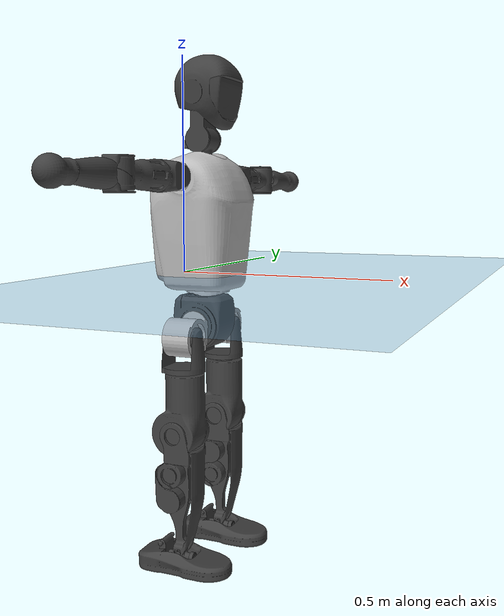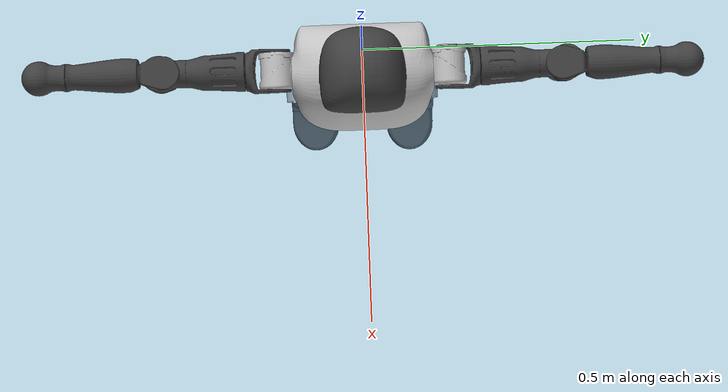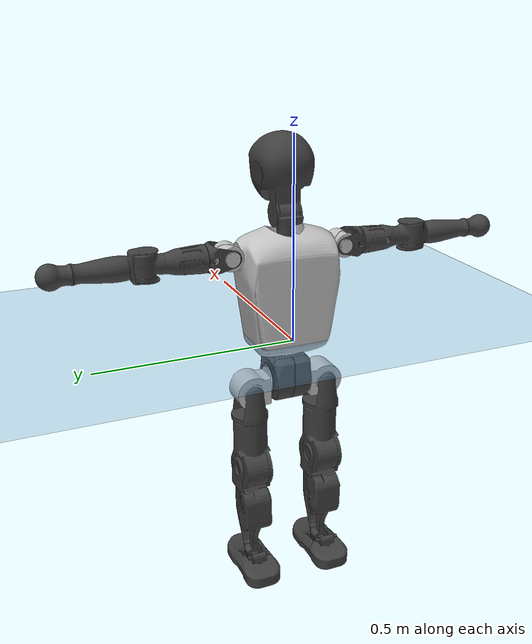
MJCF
<mujoco model="T1">
  <compiler angle="radian" assetdir="assets" balanceinertia="true" inertiafromgeom="false"/>

  <option timestep="0.005" density="1.2" viscosity="2e-05"/>

  <size nkey="1"/>

  <visual>
    <quality shadowsize="8192"/>
    <map shadowclip="0.5"/>
  </visual>

  <default>
    <default class="/">
      <joint armature="0.01" damping="0.01" frictionloss="0.1"/>
      <geom contype="0" conaffinity="0" group="1" solref="-1000 -80"/>
      <site size="0.01 0.005 0.005" group="5"/>
      <general forcelimited="true" biastype="affine" gainprm="25" biasprm="0 -25 -0.6"/>
      <default class="t1">
        <geom rgba="0.25 0.25 0.25 1"/>
        <default class="visual">
          <geom type="mesh" group="2"/>
        </default>
        <default class="collision">
          <geom group="3"/>
        </default>
        <default class="foot">
          <geom size="0.1115 0.05 0.015" type="box" condim="6" group="4" priority="1" solimp="0.015 1 0.015"/>
        </default>
        <default class="reward_collision_sphere">
          <geom group="5" rgba="1 0 0 1"/>
        </default>
      </default>
    </default>
  </default>

  <asset>
    <texture type="skybox" colorspace="auto" name="//unnamed_texture_0" builtin="gradient" rgb1="0.95 0.95 0.95" rgb2="0.95 0.95 0.95" width="100" height="600"/>
    <texture type="2d" colorspace="auto" name="texplane" builtin="checker" rgb1="0.345 0.575 0.748" rgb2="0.345 0.575 0.748" markrgb="1 1 1" width="512" height="512"/>
    <material name="MatPlane" class="/" texture="texplane" texuniform="true" texrepeat="2 2" specular="0.9"/>
    <mesh name="Trunk" class="/" file="Trunk.stl"/>
    <mesh name="H1" class="/" file="H1.stl"/>
    <mesh name="H2" class="/" file="H2.stl"/>
    <mesh name="AL1" class="/" file="AL1.stl"/>
    <mesh name="AL2" class="/" file="AL2.stl"/>
    <mesh name="AL3" class="/" file="AL3.stl"/>
    <mesh name="left_hand_link" class="/" file="left_hand_link.stl"/>
    <mesh name="AR1" class="/" file="AR1.stl"/>
    <mesh name="AR2" class="/" file="AR2.stl"/>
    <mesh name="AR3" class="/" file="AR3.stl"/>
    <mesh name="right_hand_link" class="/" file="right_hand_link.stl"/>
    <mesh name="Waist" class="/" file="Waist.stl"/>
    <mesh name="Hip_Pitch_Left" class="/" file="Hip_Pitch_Left.stl"/>
    <mesh name="Hip_Roll_Left" class="/" file="Hip_Roll_Left.stl"/>
    <mesh name="Hip_Yaw_Left" class="/" file="Hip_Yaw_Left.stl"/>
    <mesh name="Shank_Left" class="/" file="Shank_Left.stl"/>
    <mesh name="Ankle_Cross_Left" class="/" file="Ankle_Cross_Left.stl"/>
    <mesh name="left_foot_link" class="/" file="left_foot_link.stl"/>
    <mesh name="Hip_Pitch_Right" class="/" file="Hip_Pitch_Right.stl"/>
    <mesh name="Hip_Roll_Right" class="/" file="Hip_Roll_Right.stl"/>
    <mesh name="Hip_Yaw_Right" class="/" file="Hip_Yaw_Right.stl"/>
    <mesh name="Shank_Right" class="/" file="Shank_Right.stl"/>
    <mesh name="Ankle_Cross_Right" class="/" file="Ankle_Cross_Right.stl"/>
    <mesh name="right_foot_link" class="/" file="right_foot_link.stl"/>
  </asset>

  <worldbody>
    <geom name="floor" class="/" size="100 100 0.125" type="plane" group="0" material="MatPlane"/>
    <light name="toplight_shadow" class="/" pos="0 0 5" dir="0.0990148 0.0990148 -0.990148" type="directional" ambient="0.04 0.04 0.04" diffuse="0.55 0.55 0.55" specular="0.12 0.12 0.12"/>
    <light name="toplight_fill" class="/" pos="0 0 5" dir="0.0990148 0.0990148 -0.990148" type="directional" castshadow="false" ambient="0.04 0.04 0.04" diffuse="0.3 0.3 0.3" specular="0.08 0.08 0.08"/>
    <body name="trunk" childclass="t1" pos="-0.000309408 -0.000375003 -0.000812381" quat="1 -0.000160926 -9.88399e-05 -5.47862e-05">
      <inertial pos="0.0473219 -0.000457507 0.105975" quat="0.999957 6.25989e-05 -0.00930328 -0.000107893" mass="9.70833" diaginertia="0.0402996 0.0578997 0.0593402"/>
      <joint name="//unnamed_joint_0" type="free" armature="0" damping="0" frictionloss="0"/>
      <geom name="//unnamed_geom_1" class="visual" rgba="0.76 0.76 0.76 1" mesh="Trunk"/>
      <geom name="//unnamed_geom_2" class="collision" size="0.0701853 0.0935804 0.140371" pos="0.0509872 0 0.121432" type="box"/>
      <geom name="//unnamed_geom_3" class="reward_collision_sphere" size="0.107617" pos="0.0509872 0 0.101194"/>
      <geom name="//unnamed_geom_4" class="reward_collision_sphere" size="0.0140371" pos="0.0509872 0.0803835 0"/>
      <geom name="//unnamed_geom_5" class="reward_collision_sphere" size="0.0140371" pos="0.0509872 -0.0803835 0"/>
      <geom name="//unnamed_geom_6" class="reward_collision_sphere" size="0.0140371" pos="0.0509872 0.101189 0.182148"/>
      <geom name="//unnamed_geom_7" class="reward_collision_sphere" size="0.0140371" pos="0.0509872 -0.101189 0.182148"/>
      <site name="imu" pos="-0.00323578 0.00402349 -0.00277272" size="0.00935804"/>
      <camera name="track" pos="0 -1.89138 0" quat="0.707107 0.707107 0 0" mode="trackcom"/>
      <camera name="ego_camera" pos="0.103674 0 0.425013" quat="-0.5 -0.5 0.5 0.5"/>
      <body name="H1" pos="0.0526649 -0.000679989 0.245999" quat="1 -6.01192e-05 2.36104e-05 -0.000269546">
        <inertial pos="-0.00118441 -0.00177399 0.0578884" quat="0.764065 -0.0152793 0.00261208 0.644953" mass="0.368669" diaginertia="0.00010772 0.000169122 0.000159347"/>
        <joint name="AAHead_yaw" pos="0 0 0" axis="-0.00429588 0.00182366 0.999989" stiffness="0.00218493" range="-1.56028 1.57332" armature="0.00967233" damping="0.0053354" frictionloss="0.0944878"/>
        <geom name="//unnamed_geom_8" class="visual" mesh="H1"/>
        <body name="H2" pos="0.000585858 0.000707967 0.0623502" quat="1 6.34106e-05 -0.000437969 -0.000165144">
          <inertial pos="0.00615586 0.000842692 0.100128" quat="0.988151 0.108646 -0.0745352 -0.0787264" mass="0.515657" diaginertia="0.000900768 0.00146252 0.00180919"/>
          <joint name="Head_pitch" pos="0 0 0" axis="0.00143965 -0.999995 0.00266257" range="-1.23202 0.367941" armature="0.00897497" damping="0.0102696" frictionloss="0.0922124"/>
          <geom name="//unnamed_geom_9" class="visual" mesh="H2"/>
          <geom name="//unnamed_geom_10" class="collision" size="0.0748643" pos="0.00849787 0 0.111313"/>
          <geom name="//unnamed_geom_11" class="reward_collision_sphere" size="0.0842223" pos="0.0169957 0 0.101194"/>
        </body>
      </body>
      <body name="AL1" pos="0.0496765 0.101193 0.221514" quat="1 -4.31439e-05 0.000280231 8.09954e-05">
        <inertial pos="-0.000539635 0.0419918 -4.76368e-05" quat="0.504052 0.49527 -0.506155 0.494415" mass="0.433113" diaginertia="0.000598893 0.000983095 0.000312482"/>
        <joint name="Left_Shoulder_Pitch" pos="0 0 0" axis="-0.00292046 0.999996 1.46598e-06" range="-3.32217 1.22035" armature="0.00938652" damping="0.00572911" frictionloss="0.097721"/>
        <geom name="//unnamed_geom_12" class="visual" rgba="0.76 0.76 0.76 1" mesh="AL1"/>
        <body name="AL2" pos="0.00177239 0.0445548 1.12405e-05" quat="1 -9.97439e-06 0.000100972 -3.24585e-05">
          <inertial pos="0.00354504 0.0354018 -0.000174347" quat="0.486953 0.512594 -0.488643 0.511226" mass="0.129962" diaginertia="0.000175831 0.000257729 0.00018345"/>
          <joint name="Left_Shoulder_Roll" pos="0 0 0" axis="-0.999997 -0.00222907 -0.000590306" range="-1.56184 1.75117" armature="0.00909136" damping="0.00928551" frictionloss="0.0939572"/>
          <geom name="//unnamed_geom_13" class="visual" mesh="AL2"/>
          <body name="AL3" pos="0.000217765 0.0573524 0.000246756" quat="1 0.000113016 8.55253e-05 4.41038e-05">
            <inertial pos="-0.00113261 0.0806416 -0.000305905" quat="0.703691 0.710503 0.00182985 -0.000664386" mass="0.83373" diaginertia="0.00576597 0.00959724 0.000652486"/>
            <joint name="Left_Elbow_Pitch" pos="0 0 0" axis="-0.00404965 -0.999987 -0.00303698" range="-2.25922 2.26107" armature="0.00879571" damping="0.00239827" frictionloss="0.0968114"/>
            <geom name="//unnamed_geom_14" class="visual" mesh="AL3"/>
            <geom name="//unnamed_geom_15" class="collision" size="0.0280741 0.0701853" pos="0 0.0472844 0" quat="0.707105 0.707108 0 0" type="cylinder"/>
            <geom name="//unnamed_geom_16" class="reward_collision_sphere" size="0.0336889"/>
            <body name="left_hand_link" pos="0.00119469 0.138877 1.83164e-05" quat="1 -0.000230062 0.000110953 -0.000312984">
              <inertial pos="0.000288707 0.104241 -0.000455238" quat="0.707809 0.706404 -0.000188705 -0.000359044" mass="0.265793" diaginertia="0.00361566 0.00615103 0.00022438"/>
              <joint name="Left_Elbow_Yaw" pos="0 0 0" axis="0.000386594 -0.0075833 0.999971" stiffness="0.00233079" range="-2.42914 -0.00329381" armature="0.00963132" damping="0.0110081" frictionloss="0.09791"/>
              <geom name="//unnamed_geom_17" class="visual" mesh="left_hand_link"/>
              <geom name="//unnamed_geom_18" class="collision" size="0.0280741 0.0818828" pos="0 0.122939 0" quat="0.707105 0.707108 0 0" type="cylinder"/>
              <geom name="//unnamed_geom_19" class="reward_collision_sphere" size="0.0467902"/>
              <geom name="//unnamed_geom_20" class="reward_collision_sphere" size="0.0327531" pos="0 0.104026 0"/>
              <geom name="//unnamed_geom_21" class="reward_collision_sphere" size="0.0327531" pos="0 0.203323 0"/>
            </body>
          </body>
        </body>
      </body>
      <body name="AR1" pos="0.0485026 -0.10077 0.221154" quat="1 -2.07689e-06 0.000325128 0.000202446">
        <inertial pos="-0.00156564 -0.042972 -0.00074511" quat="0.499819 0.497531 -0.506812 0.495767" mass="0.427874" diaginertia="0.000610098 0.000985386 0.000312073"/>
        <joint name="Right_Shoulder_Pitch" pos="0 0 0" axis="0.000655801 -0.999999 0.00110355" range="-1.22484 3.30642" armature="0.00933919" damping="0.00463669" frictionloss="0.0968913"/>
        <geom name="//unnamed_geom_22" class="visual" rgba="0.76 0.76 0.76 1" mesh="AR1"/>
        <body name="AR2" pos="-0.000839289 -0.0435877 0.000223934" quat="1 6.74374e-05 3.89222e-05 -0.000104252">
          <inertial pos="0.00288176 -0.0355041 -0.000547746" quat="0.51176 0.487898 -0.511639 0.488143" mass="0.131413" diaginertia="0.000177372 0.000261867 0.000185251"/>
          <joint name="Right_Shoulder_Roll" pos="0 0 0" axis="-0.999994 0.00317766 0.00111127" stiffness="0.00346199" range="-1.75829 1.58806" armature="0.00958514" damping="0.00339687" frictionloss="0.0957819"/>
          <geom name="//unnamed_geom_23" class="visual" mesh="AR2"/>
          <body name="AR3" pos="-0.000570473 -0.0579576 0.000455041" quat="1 -4.4542e-05 6.65282e-05 -8.20291e-05">
            <inertial pos="-0.000290309 -0.0813353 -0.000129785" quat="0.70808 0.706125 0.00266798 0.0016446" mass="0.840658" diaginertia="0.00564882 0.00976797 0.000656119"/>
            <joint name="Right_Elbow_Pitch" pos="0 0 0" axis="0.000830711 0.999993 0.00356602" range="-2.2899 2.28018" armature="0.00936762" damping="0.00616562" frictionloss="0.0931812"/>
            <geom name="//unnamed_geom_24" class="visual" mesh="AR3"/>
            <geom name="//unnamed_geom_25" class="collision" size="0.0280741 0.0701853" pos="0 -0.0472844 0" quat="0.707105 0.707108 0 0" type="cylinder"/>
            <geom name="//unnamed_geom_26" class="reward_collision_sphere" size="0.0336889"/>
            <body name="right_hand_link" pos="-0.000960289 -0.139133 -0.000804807" quat="1 0.000104764 -0.00029193 4.73983e-06">
              <inertial pos="7.51617e-05 -0.104021 0.00148559" quat="0.706341 0.707872 0.000219263 -6.48014e-05" mass="0.26876" diaginertia="0.00362498 0.00614452 0.000229775"/>
              <joint name="Right_Elbow_Yaw" pos="0 0 0" axis="-0.000725432 -0.00362064 0.999993" range="0.00782505 2.43696" armature="0.00941471" damping="0.0113542" frictionloss="0.089831"/>
              <geom name="//unnamed_geom_27" class="visual" mesh="right_hand_link"/>
              <geom name="//unnamed_geom_28" class="collision" size="0.0280741 0.0818828" pos="0 -0.122939 0" quat="0.707105 0.707108 0 0" type="cylinder"/>
              <geom name="//unnamed_geom_29" class="reward_collision_sphere" size="0.0467902"/>
              <geom name="//unnamed_geom_30" class="reward_collision_sphere" size="0.0327531" pos="0 -0.104026 0"/>
              <geom name="//unnamed_geom_31" class="reward_collision_sphere" size="0.0327531" pos="0 -0.203323 0"/>
            </body>
          </body>
        </body>
      </body>
      <body name="Waist" pos="0.0535016 -0.00170507 -0.116535" quat="1 -6.2496e-08 2.85351e-05 -3.02777e-05">
        <inertial pos="0.000566146 -0.00133152 0.0075106" quat="0.983616 3.21216e-05 -0.180259 0.00246696" mass="2.1203" diaginertia="0.00235663 0.0040065 0.00499281"/>
        <joint name="Waist" pos="0 0 0" axis="0.00324151 0.0026196 0.999991" range="-1.57435 1.57276" armature="0.00974602" damping="0.0157073" frictionloss="0.0928387"/>
        <geom name="//unnamed_geom_32" class="visual" mesh="Waist"/>
        <body name="Hip_Pitch_Left" pos="-4.55548e-05 0.0997614 -0.000734269" quat="1 0.000753523 -0.000119887 0.000497194">
          <inertial pos="0.00145155 -0.00654557 -0.0180978" quat="0.975428 0.219851 0.0143203 0.00107787" mass="0.819401" diaginertia="0.000791027 0.00108815 0.00132765"/>
          <joint name="Left_Hip_Pitch" pos="0 0 0" axis="-0.00179672 0.999998 -9.24816e-05" stiffness="0.00195106" range="-1.80321 1.56635" armature="0.00959606" damping="0.00839616" frictionloss="0.097624"/>
          <geom name="//unnamed_geom_33" class="visual" rgba="0.76 0.76 0.76 1" mesh="Hip_Pitch_Left"/>
          <body name="Hip_Roll_Left" pos="0.00126165 0.000665712 -0.0218162" quat="1 -0.000311929 -0.000395508 -0.000158322">
            <inertial pos="0.000413853 0.000910047 -0.0549709" quat="0.706856 -0.00612867 -0.00630448 0.707303" mass="0.319515" diaginertia="0.000768877 0.00114771 0.000546688"/>
            <joint name="Left_Hip_Roll" pos="0 0 0" axis="-0.999997 0.00225665 -0.000458624" range="-1.56731 0.198554" armature="0.00904332" damping="0.00928437" frictionloss="0.0931628"/>
            <geom name="//unnamed_geom_34" class="visual" mesh="Hip_Roll_Left"/>
            <geom name="//unnamed_geom_35" class="reward_collision_sphere" size="0.0514692"/>
            <body name="Hip_Yaw_Left" pos="0.00206922 -0.00146869 -0.084286" quat="1 3.69242e-05 7.79874e-05 -0.00015944">
              <inertial pos="-0.0061871 0.000788686 -0.0899099" quat="0.696639 -0.0337617 -0.03123 0.715946" mass="1.7634" diaginertia="0.0113094 0.0189801 0.00274198"/>
              <joint name="Left_Hip_Yaw" pos="0 0 0" axis="-0.000850979 -0.000312847 -1" range="-1.00075 1.01067" armature="0.00938988" damping="0.0137671" frictionloss="0.0896581"/>
              <geom name="//unnamed_geom_36" class="visual" mesh="Hip_Yaw_Left"/>
              <geom name="//unnamed_geom_37" class="collision" size="0.0467902 0.0748643" type="cylinder"/>
              <body name="Shank_Left" pos="-0.0102864 0.000624822 -0.135138" quat="1 2.10222e-06 -0.000102038 -0.00024468">
                <inertial pos="-0.00489419 0.00141128 -0.12647" quat="0.997562 0.000836106 -0.022727 0.0659728" mass="1.40148" diaginertia="0.015324 0.0256867 0.00196167"/>
                <joint name="Left_Knee_Pitch" pos="0 0 0" axis="0.000132501 0.999996 0.0027228" range="-0.00164453 2.3403" armature="0.00910587" damping="0.0134765" frictionloss="0.0938829"/>
                <geom name="//unnamed_geom_38" class="visual" mesh="Shank_Left"/>
                <geom name="//unnamed_geom_39" class="collision" size="0.0467902 0.0701853" pos="0 0 -0.121432" type="cylinder"/>
                <geom name="//unnamed_geom_40" class="reward_collision_sphere" size="0.0608272"/>
                <body name="Ankle_Cross_Left" pos="-0.000955463 0.000363149 -0.283492" quat="1 0.00033511 -0.000122096 2.14408e-05">
                  <inertial pos="-0.00316523 -0.000193316 -0.0082113" quat="0.442654 0.553115 0.549495 0.442919" mass="0.0607175" diaginertia="1.28278e-05 1.94621e-05 1.20733e-05"/>
                  <joint name="Left_Ankle_Pitch" pos="0 0 0" axis="0.000190724 1 6.79612e-05" range="-0.88742 0.362661" armature="0.00892882" damping="0.00111951" frictionloss="0.0892959"/>
                  <geom name="//unnamed_geom_41" class="visual" mesh="Ankle_Cross_Left"/>
                  <body name="left_foot_link" pos="0.000433365 0.00062256 -0.0126352" quat="1 -0.000328114 0.000285406 0.00018196">
                    <inertial pos="-0.00022479 0.000441239 -0.0092286" quat="0.00140505 0.621869 -8.75491e-05 0.78312" mass="0.572452" diaginertia="0.00122847 0.00183005 0.0023973"/>
                    <joint name="Left_Ankle_Roll" pos="0 0 0" axis="-0.99999 -0.0032926 -0.00292148" range="-0.440308 0.458496" armature="0.00941859" damping="0.00817156" frictionloss="0.100231"/>
                    <geom name="//unnamed_geom_42" class="visual" mesh="left_foot_link"/>
                    <geom name="left_foot" class="foot" size="0.103001 0.0462609 0.0150905" pos="0.00849787 0 -0.015179"/>
                    <geom name="//unnamed_geom_44" class="reward_collision_sphere" size="0.0486618" pos="0.00849787 0 -0.015179"/>
                    <geom name="//unnamed_geom_45" class="reward_collision_sphere" size="0.0280741" pos="0.0807298 -0.0217508 -0.015179"/>
                    <geom name="//unnamed_geom_46" class="reward_collision_sphere" size="0.0280741" pos="-0.0594851 -0.0217508 -0.015179"/>
                    <site name="left_foot" class="foot" pos="0.00849787 0 -0.015179" size="0.00935804"/>
                  </body>
                </body>
              </body>
            </body>
          </body>
        </body>
        <body name="Hip_Pitch_Right" pos="-0.000472319 -0.100157 -5.86256e-05" quat="1 0.000116032 -8.02649e-05 -0.000234506">
          <inertial pos="0.00086396 0.00708978 -0.0173063" quat="0.973609 -0.227962 0.010094 -0.0041905" mass="0.831254" diaginertia="0.000789418 0.00107929 0.00131249"/>
          <joint name="Right_Hip_Pitch" pos="0 0 0" axis="-0.000313946 -0.999998 0.00205416" range="-1.57683 1.81834" armature="0.00925259" damping="0.00726372" frictionloss="0.0946001"/>
          <geom name="//unnamed_geom_47" class="visual" rgba="0.76 0.76 0.76 1" mesh="Hip_Pitch_Right"/>
          <body name="Hip_Roll_Right" pos="-0.000732575 -0.000276123 -0.0205952" quat="1 1.14689e-06 -9.06081e-06 8.95862e-05">
            <inertial pos="0.00125207 -0.00114202 -0.0544041" quat="0.708789 -0.007181 -0.0053519 0.705364" mass="0.318379" diaginertia="0.000772848 0.00114843 0.00054795"/>
            <joint name="Right_Hip_Roll" pos="0 0 0" axis="-1 9.62467e-05 0.000215828" range="-0.2119 1.56946" armature="0.00982433" damping="0.00622185" frictionloss="0.0943972"/>
            <geom name="//unnamed_geom_48" class="visual" mesh="Hip_Roll_Right"/>
            <geom name="//unnamed_geom_49" class="reward_collision_sphere" size="0.0514692"/>
            <body name="Hip_Yaw_Right" pos="0.000202466 0.0012236 -0.0830632" quat="1 -1.10674e-05 -2.60371e-06 -5.82673e-05">
              <inertial pos="-0.00507927 -0.000479094 -0.0914529" quat="0.715143 -0.0321971 -0.0343969 0.697389" mass="1.78755" diaginertia="0.0114483 0.0193362 0.00277847"/>
              <joint name="Right_Hip_Yaw" pos="0 0 0" axis="0.00256561 -0.00453528 -0.999986" stiffness="0.00117598" range="-1.00272 1.02308" armature="0.00933425" damping="0.0120694" frictionloss="0.0930207"/>
              <geom name="//unnamed_geom_50" class="visual" mesh="Hip_Yaw_Right"/>
              <geom name="//unnamed_geom_51" class="collision" size="0.0467902 0.0748643" type="cylinder"/>
              <body name="Shank_Right" pos="-0.0122483 -0.000812255 -0.136578" quat="1 -9.39727e-06 7.9276e-07 6.05868e-07">
                <inertial pos="-0.00402553 -3.47311e-05 -0.123343" quat="0.999275 -6.13652e-05 -0.0234705 -0.0299709" mass="1.48315" diaginertia="0.0156092 0.0265145 0.00208986"/>
                <joint name="Right_Knee_Pitch" pos="0 0 0" axis="0.00548432 -0.999953 0.00794357" range="-2.33818 0.00643546" armature="0.0089596" damping="0.00641946" frictionloss="0.091662"/>
                <geom name="//unnamed_geom_52" class="visual" mesh="Shank_Right"/>
                <geom name="//unnamed_geom_53" class="collision" size="0.0467902 0.0701853" pos="0 0 -0.121432" type="cylinder"/>
                <geom name="//unnamed_geom_54" class="reward_collision_sphere" size="0.0608272"/>
                <body name="Ankle_Cross_Right" pos="0.00129736 -0.00161552 -0.283687" quat="1 -1.61221e-06 -0.00025496 0.000308957">
                  <inertial pos="-0.00355215 -1.79852e-05 -0.00851684" quat="0.443549 0.55113 0.550493 0.443259" mass="0.059512" diaginertia="1.27806e-05 1.93842e-05 1.20628e-05"/>
                  <joint name="Right_Ankle_Pitch" pos="0 0 0" axis="-0.000771362 -0.999999 -0.0006677" range="-0.332333 0.886429" armature="0.0094568" damping="0.00561523" frictionloss="0.0935353"/>
                  <geom name="//unnamed_geom_55" class="visual" mesh="Ankle_Cross_Right"/>
                  <body name="right_foot_link" pos="7.1917e-07 -0.000870772 -0.0115285" quat="1 4.63374e-05 3.86421e-05 0.000138761">
                    <inertial pos="0.00043859 -0.000435658 -0.00933394" quat="-0.000467993 0.620669 -4.53835e-05 0.784072" mass="0.560842" diaginertia="0.00118435 0.00182037 0.00232926"/>
                    <joint name="Right_Ankle_Roll" pos="0 0 0" axis="-1 -1.14646e-05 -6.07631e-05" range="-0.457837 0.456972" armature="0.00928298" damping="0.0089883" frictionloss="0.0953393"/>
                    <geom name="//unnamed_geom_56" class="visual" mesh="right_foot_link"/>
                    <geom name="right_foot" class="foot" size="0.0986062 0.0452032 0.0140611" pos="0.00849787 0 -0.015179"/>
                    <geom name="//unnamed_geom_58" class="reward_collision_sphere" size="0.0374321"/>
                    <geom name="//unnamed_geom_59" class="reward_collision_sphere" size="0.0280741" pos="0.00849787 0 -0.015179"/>
                    <geom name="//unnamed_geom_60" class="reward_collision_sphere" size="0.0280741" pos="0.0807298 0.0217508 -0.015179"/>
                    <geom name="//unnamed_geom_61" class="reward_collision_sphere" size="0.0280741" pos="-0.0594851 0.0217508 -0.015179"/>
                    <site name="right_foot" class="foot" pos="0.00849787 0 -0.015179" size="0.00935804"/>
                  </body>
                </body>
              </body>
            </body>
          </body>
        </body>
      </body>
    </body>
  </worldbody>

  <contact>
    <pair class="/" geom1="floor" geom2="left_foot" name="//unnamed_contact_0"/>
    <pair class="/" geom1="floor" geom2="right_foot" name="//unnamed_contact_1"/>
  </contact>

  <actuator>
    <general name="AAHead_yaw" class="/" joint="AAHead_yaw" forcerange="-6.57205 6.57205" gainprm="22.8767" biasprm="0 -22.8767 -0.561314"/>
    <general name="Head_pitch" class="/" joint="Head_pitch" forcerange="-6.6236 6.6236" gainprm="22.8767" biasprm="0 -22.8767 -0.561314"/>
    <general name="Left_Shoulder_Pitch" class="/" joint="Left_Shoulder_Pitch" forcerange="-16.8924 16.8924" gainprm="22.8767" biasprm="0 -22.8767 -0.561314"/>
    <general name="Left_Shoulder_Roll" class="/" joint="Left_Shoulder_Roll" forcerange="-17.3318 17.3318" gainprm="22.8767" biasprm="0 -22.8767 -0.561314"/>
    <general name="Left_Elbow_Pitch" class="/" joint="Left_Elbow_Pitch" forcerange="-16.3522 16.3522" gainprm="22.8767" biasprm="0 -22.8767 -0.561314"/>
    <general name="Left_Elbow_Yaw" class="/" joint="Left_Elbow_Yaw" forcerange="-17.1418 17.1418" gainprm="22.8767" biasprm="0 -22.8767 -0.561314"/>
    <general name="Right_Shoulder_Pitch" class="/" joint="Right_Shoulder_Pitch" forcerange="-17.2813 17.2813" gainprm="22.8767" biasprm="0 -22.8767 -0.561314"/>
    <general name="Right_Shoulder_Roll" class="/" joint="Right_Shoulder_Roll" forcerange="-17.2482 17.2482" gainprm="22.8767" biasprm="0 -22.8767 -0.561314"/>
    <general name="Right_Elbow_Pitch" class="/" joint="Right_Elbow_Pitch" forcerange="-16.8639 16.8639" gainprm="22.8767" biasprm="0 -22.8767 -0.561314"/>
    <general name="Right_Elbow_Yaw" class="/" joint="Right_Elbow_Yaw" forcerange="-16.7449 16.7449" gainprm="22.8767" biasprm="0 -22.8767 -0.561314"/>
    <general name="Waist" class="/" joint="Waist" forcerange="-28.5291 28.5291" gainprm="22.8767" biasprm="0 -22.8767 -0.561314"/>
    <general name="Left_Hip_Pitch" class="/" joint="Left_Hip_Pitch" forcerange="-42.9148 42.9148" gainprm="22.8767" biasprm="0 -22.8767 -0.561314"/>
    <general name="Left_Hip_Roll" class="/" joint="Left_Hip_Roll" forcerange="-28.533 28.533" gainprm="22.8767" biasprm="0 -22.8767 -0.561314"/>
    <general name="Left_Hip_Yaw" class="/" joint="Left_Hip_Yaw" forcerange="-27.1762 27.1762" gainprm="22.8767" biasprm="0 -22.8767 -0.561314"/>
    <general name="Left_Knee_Pitch" class="/" joint="Left_Knee_Pitch" forcerange="-53.8637 53.8637" gainprm="22.8767" biasprm="0 -22.8767 -0.561314"/>
    <general name="Left_Ankle_Pitch" class="/" joint="Left_Ankle_Pitch" forcerange="-18.8548 18.8548" gainprm="22.8767" biasprm="0 -22.8767 -0.561314"/>
    <general name="Left_Ankle_Roll" class="/" joint="Left_Ankle_Roll" forcerange="-14.0232 14.0232" gainprm="22.8767" biasprm="0 -22.8767 -0.561314"/>
    <general name="Right_Hip_Pitch" class="/" joint="Right_Hip_Pitch" forcerange="-41.9259 41.9259" gainprm="22.8767" biasprm="0 -22.8767 -0.561314"/>
    <general name="Right_Hip_Roll" class="/" joint="Right_Hip_Roll" forcerange="-27.8465 27.8465" gainprm="22.8767" biasprm="0 -22.8767 -0.561314"/>
    <general name="Right_Hip_Yaw" class="/" joint="Right_Hip_Yaw" forcerange="-27.1596 27.1596" gainprm="22.8767" biasprm="0 -22.8767 -0.561314"/>
    <general name="Right_Knee_Pitch" class="/" joint="Right_Knee_Pitch" forcerange="-56.3091 56.3091" gainprm="22.8767" biasprm="0 -22.8767 -0.561314"/>
    <general name="Right_Ankle_Pitch" class="/" joint="Right_Ankle_Pitch" forcerange="-18.7318 18.7318" gainprm="22.8767" biasprm="0 -22.8767 -0.561314"/>
    <general name="Right_Ankle_Roll" class="/" joint="Right_Ankle_Roll" forcerange="-14.0133 14.0133" gainprm="22.8767" biasprm="0 -22.8767 -0.561314"/>
  </actuator>

  <sensor>
    <gyro site="imu" name="imu_angular_velocity"/>
    <velocimeter site="imu" name="imu_linear_velocity"/>
    <framelinvel objtype="site" objname="left_foot" name="left_foot_global_linear_velocity"/>
    <framelinvel objtype="site" objname="right_foot" name="right_foot_global_linear_velocity"/>
  </sensor>

  <keyframe>
    <key name="home" qpos="0 0 0.6385 1 0 0 0 0 0 0 1.4 0 -0.4 0 -1.4 0 0.4 0 -0.4 0 0 0.8 -0.4 0 0.4 0 0 -0.8 0.4 0"/>
  </keyframe>
</mujoco>
